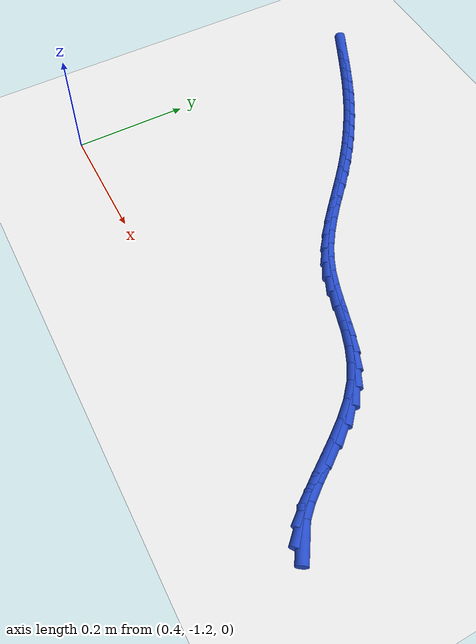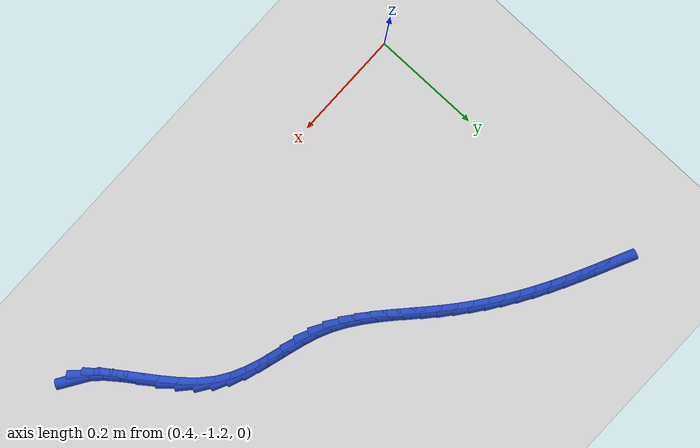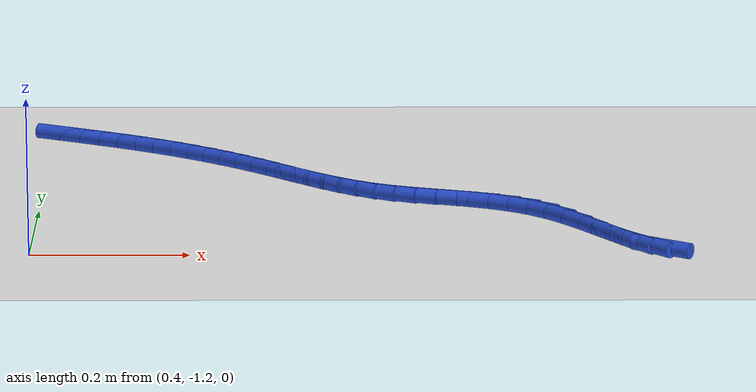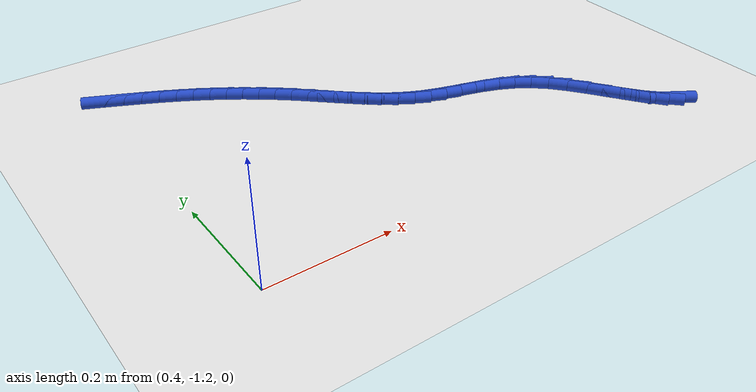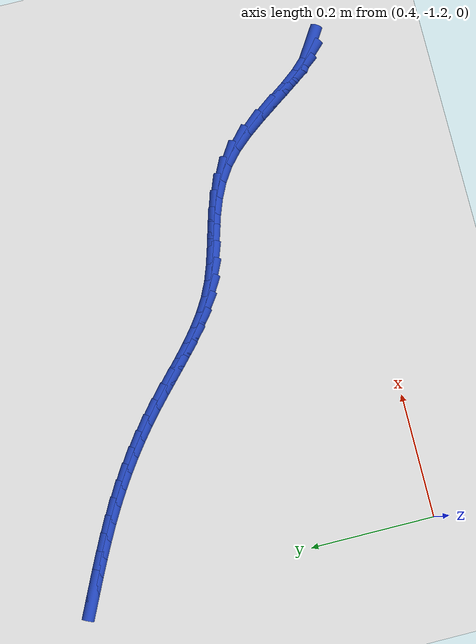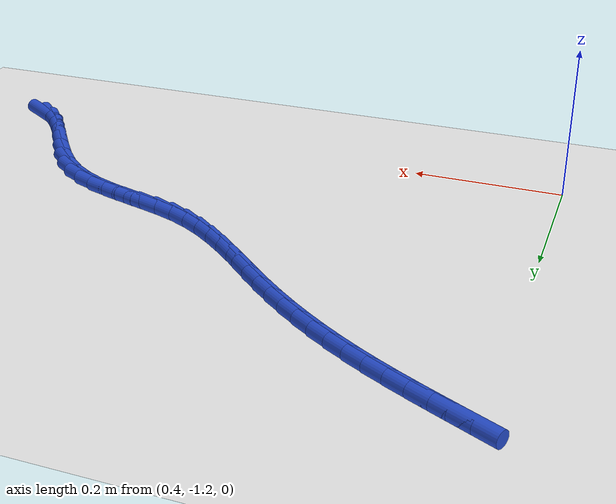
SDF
<sdf version="1.6">
 <world name="default">
  <model name="ground_plane">
   <static>1</static>
   <link name="link">
    <collision name="collision">
     <geometry><plane><normal>0 0 1</normal><size>100 100</size></plane></geometry>
     <surface><friction><ode><mu>100</mu><mu2>50</mu2></ode></friction></surface>
    </collision>
    <visual name="visual">
     <cast_shadows>0</cast_shadows>
     <geometry><plane><normal>0 0 1</normal><size>100 100</size></plane></geometry>
     <material>
      <script><uri>file://media/materials/scripts/gazebo.material</uri><name>Gazebo/WhiteGlow</name></script>
     </material>
    </visual>
   </link>
  </model>
  <model name="line">
   <link name="link_216">
    <pose>1.1866584900869217 -1.1971307438332957 0.01 0 1.57 -0.5693423701207709</pose>
    <collision name="collision">
     <geometry><cylinder><radius>0.01</radius><length>0.08</length></cylinder></geometry>
    </collision>
    <visual name="visual">
     <material>
      <script><name>Gazebo/Blue</name><uri>file://media/materials/scripts/gazebo.material</uri></script>
     </material>
     <geometry><cylinder><radius>0.01</radius><length>0.08</length></cylinder></geometry>
    </visual>
   </link>
   <link name="link_217">
    <pose>1.1690321390657084 -1.1858491541812 0.01 0 1.57 -0.7975392873785471</pose>
    <collision name="collision">
     <geometry><cylinder><radius>0.01</radius><length>0.08</length></cylinder></geometry>
    </collision>
    <visual name="visual">
     <material>
      <script><name>Gazebo/Blue</name><uri>file://media/materials/scripts/gazebo.material</uri></script>
     </material>
     <geometry><cylinder><radius>0.01</radius><length>0.08</length></cylinder></geometry>
    </visual>
   </link>
   <link name="link_218">
    <pose>1.1513226930928024 -1.1677043762399857 0.01 0 1.57 -0.9092844599987848</pose>
    <collision name="collision">
     <geometry><cylinder><radius>0.01</radius><length>0.08</length></cylinder></geometry>
    </collision>
    <visual name="visual">
     <material>
      <script><name>Gazebo/Blue</name><uri>file://media/materials/scripts/gazebo.material</uri></script>
     </material>
     <geometry><cylinder><radius>0.01</radius><length>0.08</length></cylinder></geometry>
    </visual>
   </link>
   <link name="link_219">
    <pose>1.1332986395376108 -1.1445529922296882 0.01 0 1.57 -0.9560198471077246</pose>
    <collision name="collision">
     <geometry><cylinder><radius>0.01</radius><length>0.08</length></cylinder></geometry>
    </collision>
    <visual name="visual">
     <material>
      <script><name>Gazebo/Blue</name><uri>file://media/materials/scripts/gazebo.material</uri></script>
     </material>
     <geometry><cylinder><radius>0.01</radius><length>0.08</length></cylinder></geometry>
    </visual>
   </link>
   <link name="link_220">
    <pose>1.1147284657695387 -1.1182515843703422 0.01 0 1.57 -0.9593067928655916</pose>
    <collision name="collision">
     <geometry><cylinder><radius>0.01</radius><length>0.08</length></cylinder></geometry>
    </collision>
    <visual name="visual">
     <material>
      <script><name>Gazebo/Blue</name><uri>file://media/materials/scripts/gazebo.material</uri></script>
     </material>
     <geometry><cylinder><radius>0.01</radius><length>0.08</length></cylinder></geometry>
    </visual>
   </link>
   <link name="link_221">
    <pose>1.0953806591579929 -1.090656734881984 0.01 0 1.57 -0.9253289901051559</pose>
    <collision name="collision">
     <geometry><cylinder><radius>0.01</radius><length>0.08</length></cylinder></geometry>
    </collision>
    <visual name="visual">
     <material>
      <script><name>Gazebo/Blue</name><uri>file://media/materials/scripts/gazebo.material</uri></script>
     </material>
     <geometry><cylinder><radius>0.01</radius><length>0.08</length></cylinder></geometry>
    </visual>
   </link>
   <link name="link_222">
    <pose>1.0750237070723792 -1.0636250259846476 0.01 0 1.57 -0.8505385525816863</pose>
    <collision name="collision">
     <geometry><cylinder><radius>0.01</radius><length>0.08</length></cylinder></geometry>
    </collision>
    <visual name="visual">
     <material>
      <script><name>Gazebo/Blue</name><uri>file://media/materials/scripts/gazebo.material</uri></script>
     </material>
     <geometry><cylinder><radius>0.01</radius><length>0.08</length></cylinder></geometry>
    </visual>
   </link>
   <link name="link_223">
    <pose>1.0534260968821043 -1.0390130398983684 0.01 0 1.57 -0.7250607380103447</pose>
    <collision name="collision">
     <geometry><cylinder><radius>0.01</radius><length>0.08</length></cylinder></geometry>
    </collision>
    <visual name="visual">
     <material>
      <script><name>Gazebo/Blue</name><uri>file://media/materials/scripts/gazebo.material</uri></script>
     </material>
     <geometry><cylinder><radius>0.01</radius><length>0.08</length></cylinder></geometry>
    </visual>
   </link>
   <link name="link_224">
    <pose>1.030374599080651 -1.0185879929364443 0.01 0 1.57 -0.5787237182638838</pose>
    <collision name="collision">
     <geometry><cylinder><radius>0.01</radius><length>0.08</length></cylinder></geometry>
    </collision>
    <visual name="visual">
     <material>
      <script><name>Gazebo/Blue</name><uri>file://media/materials/scripts/gazebo.material</uri></script>
     </material>
     <geometry><cylinder><radius>0.01</radius><length>0.08</length></cylinder></geometry>
    </visual>
   </link>
   <link name="link_225">
    <pose>1.0059589694364879 -1.002636142593941 0.01 0 1.57 -0.4538645234127954</pose>
    <collision name="collision">
     <geometry><cylinder><radius>0.01</radius><length>0.08</length></cylinder></geometry>
    </collision>
    <visual name="visual">
     <material>
      <script><name>Gazebo/Blue</name><uri>file://media/materials/scripts/gazebo.material</uri></script>
     </material>
     <geometry><cylinder><radius>0.01</radius><length>0.08</length></cylinder></geometry>
    </visual>
   </link>
   <link name="link_226">
    <pose>0.980518226397697 -0.9902253777060909 0.01 0 1.57 -0.3602207529281299</pose>
    <collision name="collision">
     <geometry><cylinder><radius>0.01</radius><length>0.08</length></cylinder></geometry>
    </collision>
    <visual name="visual">
     <material>
      <script><name>Gazebo/Blue</name><uri>file://media/materials/scripts/gazebo.material</uri></script>
     </material>
     <geometry><cylinder><radius>0.01</radius><length>0.08</length></cylinder></geometry>
    </visual>
   </link>
   <link name="link_227">
    <pose>0.9543987985475458 -0.9803873671794677 0.01 0 1.57 -0.30176292657041004</pose>
    <collision name="collision">
     <geometry><cylinder><radius>0.01</radius><length>0.08</length></cylinder></geometry>
    </collision>
    <visual name="visual">
     <material>
      <script><name>Gazebo/Blue</name><uri>file://media/materials/scripts/gazebo.material</uri></script>
     </material>
     <geometry><cylinder><radius>0.01</radius><length>0.08</length></cylinder></geometry>
    </visual>
   </link>
   <link name="link_228">
    <pose>0.927947114469301 -0.972153779920644 0.01 0 1.57 -0.2798348913563713</pose>
    <collision name="collision">
     <geometry><cylinder><radius>0.01</radius><length>0.08</length></cylinder></geometry>
    </collision>
    <visual name="visual">
     <material>
      <script><name>Gazebo/Blue</name><uri>file://media/materials/scripts/gazebo.material</uri></script>
     </material>
     <geometry><cylinder><radius>0.01</radius><length>0.08</length></cylinder></geometry>
    </visual>
   </link>
   <link name="link_229">
    <pose>0.9015096027462287 -0.9645562848361928 0.01 0 1.57 -0.29520506908128824</pose>
    <collision name="collision">
     <geometry><cylinder><radius>0.01</radius><length>0.08</length></cylinder></geometry>
    </collision>
    <visual name="visual">
     <material>
      <script><name>Gazebo/Blue</name><uri>file://media/materials/scripts/gazebo.material</uri></script>
     </material>
     <geometry><cylinder><radius>0.01</radius><length>0.08</length></cylinder></geometry>
    </visual>
   </link>
   <link name="link_230">
    <pose>0.8754326919615958 -0.9566265508326872 0.01 0 1.57 -0.34894132270465744</pose>
    <collision name="collision">
     <geometry><cylinder><radius>0.01</radius><length>0.08</length></cylinder></geometry>
    </collision>
    <visual name="visual">
     <material>
      <script><name>Gazebo/Blue</name><uri>file://media/materials/scripts/gazebo.material</uri></script>
     </material>
     <geometry><cylinder><radius>0.01</radius><length>0.08</length></cylinder></geometry>
    </visual>
   </link>
   <link name="link_231">
    <pose>0.8500628106986687 -0.9473962468167001 0.01 0 1.57 -0.4405204934752291</pose>
    <collision name="collision">
     <geometry><cylinder><radius>0.01</radius><length>0.08</length></cylinder></geometry>
    </collision>
    <visual name="visual">
     <material>
      <script><name>Gazebo/Blue</name><uri>file://media/materials/scripts/gazebo.material</uri></script>
     </material>
     <geometry><cylinder><radius>0.01</radius><length>0.08</length></cylinder></geometry>
    </visual>
   </link>
   <link name="link_232">
    <pose>0.8257346418905878 -0.9359275457532252 0.01 0 1.57 -0.540925117906545</pose>
    <collision name="collision">
     <geometry><cylinder><radius>0.01</radius><length>0.08</length></cylinder></geometry>
    </collision>
    <visual name="visual">
     <material>
      <script><name>Gazebo/Blue</name><uri>file://media/materials/scripts/gazebo.material</uri></script>
     </material>
     <geometry><cylinder><radius>0.01</radius><length>0.08</length></cylinder></geometry>
    </visual>
   </link>
   <link name="link_233">
    <pose>0.802514530857813 -0.9219795072099874 0.01 0 1.57 -0.6213213689186607</pose>
    <collision name="collision">
     <geometry><cylinder><radius>0.01</radius><length>0.08</length></cylinder></geometry>
    </collision>
    <visual name="visual">
     <material>
      <script><name>Gazebo/Blue</name><uri>file://media/materials/scripts/gazebo.material</uri></script>
     </material>
     <geometry><cylinder><radius>0.01</radius><length>0.08</length></cylinder></geometry>
    </visual>
   </link>
   <link name="link_234">
    <pose>0.7802014883185591 -0.9060054724876785 0.01 0 1.57 -0.680968426996805</pose>
    <collision name="collision">
     <geometry><cylinder><radius>0.01</radius><length>0.08</length></cylinder></geometry>
    </collision>
    <visual name="visual">
     <material>
      <script><name>Gazebo/Blue</name><uri>file://media/materials/scripts/gazebo.material</uri></script>
     </material>
     <geometry><cylinder><radius>0.01</radius><length>0.08</length></cylinder></geometry>
    </visual>
   </link>
   <link name="link_235">
    <pose>0.7585829799438844 -0.8884887659691695 0.01 0 1.57 -0.7210126050683676</pose>
    <collision name="collision">
     <geometry><cylinder><radius>0.01</radius><length>0.08</length></cylinder></geometry>
    </collision>
    <visual name="visual">
     <material>
      <script><name>Gazebo/Blue</name><uri>file://media/materials/scripts/gazebo.material</uri></script>
     </material>
     <geometry><cylinder><radius>0.01</radius><length>0.08</length></cylinder></geometry>
    </visual>
   </link>
   <link name="link_236">
    <pose>0.7374464714048451 -0.8699127120373297 0.01 0 1.57 -0.7425706995114103</pose>
    <collision name="collision">
     <geometry><cylinder><radius>0.01</radius><length>0.08</length></cylinder></geometry>
    </collision>
    <visual name="visual">
     <material>
      <script><name>Gazebo/Blue</name><uri>file://media/materials/scripts/gazebo.material</uri></script>
     </material>
     <geometry><cylinder><radius>0.01</radius><length>0.08</length></cylinder></geometry>
    </visual>
   </link>
   <link name="link_237">
    <pose>0.7165794283724977 -0.8507606350750289 0.01 0 1.57 -0.7463382584181456</pose>
    <collision name="collision">
     <geometry><cylinder><radius>0.01</radius><length>0.08</length></cylinder></geometry>
    </collision>
    <visual name="visual">
     <material>
      <script><name>Gazebo/Blue</name><uri>file://media/materials/scripts/gazebo.material</uri></script>
     </material>
     <geometry><cylinder><radius>0.01</radius><length>0.08</length></cylinder></geometry>
    </visual>
   </link>
   <link name="link_238">
    <pose>0.6957693165178995 -0.8315158594651372 0.01 0 1.57 -0.73241995016818</pose>
    <collision name="collision">
     <geometry><cylinder><radius>0.01</radius><length>0.08</length></cylinder></geometry>
    </collision>
    <visual name="visual">
     <material>
      <script><name>Gazebo/Blue</name><uri>file://media/materials/scripts/gazebo.material</uri></script>
     </material>
     <geometry><cylinder><radius>0.01</radius><length>0.08</length></cylinder></geometry>
    </visual>
   </link>
   <link name="link_239">
    <pose>0.6748036024335081 -0.8126617066499123 0.01 0 1.57 -0.7036503330837721</pose>
    <collision name="collision">
     <geometry><cylinder><radius>0.01</radius><length>0.08</length></cylinder></geometry>
    </collision>
    <visual name="visual">
     <material>
      <script><name>Gazebo/Blue</name><uri>file://media/materials/scripts/gazebo.material</uri></script>
     </material>
     <geometry><cylinder><radius>0.01</radius><length>0.08</length></cylinder></geometry>
    </visual>
   </link>
   <link name="link_240">
    <pose>0.6535000944622189 -0.794584663654881 0.01 0 1.57 -0.671771883702568</pose>
    <collision name="collision">
     <geometry><cylinder><radius>0.01</radius><length>0.08</length></cylinder></geometry>
    </collision>
    <visual name="visual">
     <material>
      <script><name>Gazebo/Blue</name><uri>file://media/materials/scripts/gazebo.material</uri></script>
     </material>
     <geometry><cylinder><radius>0.01</radius><length>0.08</length></cylinder></geometry>
    </visual>
   </link>
   <link name="link_241">
    <pose>0.6317868041204853 -0.777319508725428 0.01 0 1.57 -0.6397602968588639</pose>
    <collision name="collision">
     <geometry><cylinder><radius>0.01</radius><length>0.08</length></cylinder></geometry>
    </collision>
    <visual name="visual">
     <material>
      <script><name>Gazebo/Blue</name><uri>file://media/materials/scripts/gazebo.material</uri></script>
     </material>
     <geometry><cylinder><radius>0.01</radius><length>0.08</length></cylinder></geometry>
    </visual>
   </link>
   <link name="link_242">
    <pose>0.6096167552116529 -0.7608211944483237 0.01 0 1.57 -0.6079046488071548</pose>
    <collision name="collision">
     <geometry><cylinder><radius>0.01</radius><length>0.08</length></cylinder></geometry>
    </collision>
    <visual name="visual">
     <material>
      <script><name>Gazebo/Blue</name><uri>file://media/materials/scripts/gazebo.material</uri></script>
     </material>
     <geometry><cylinder><radius>0.01</radius><length>0.08</length></cylinder></geometry>
    </visual>
   </link>
   <link name="link_243">
    <pose>0.5869429715390663 -0.7450446734103368 0.01 0 1.57 -0.5764918603194846</pose>
    <collision name="collision">
     <geometry><cylinder><radius>0.01</radius><length>0.08</length></cylinder></geometry>
    </collision>
    <visual name="visual">
     <material>
      <script><name>Gazebo/Blue</name><uri>file://media/materials/scripts/gazebo.material</uri></script>
     </material>
     <geometry><cylinder><radius>0.01</radius><length>0.08</length></cylinder></geometry>
    </visual>
   </link>
   <link name="link_244">
    <pose>0.5637184769060718 -0.7299448981982382 0.01 0 1.57 -0.5457964159799242</pose>
    <collision name="collision">
     <geometry><cylinder><radius>0.01</radius><length>0.08</length></cylinder></geometry>
    </collision>
    <visual name="visual">
     <material>
      <script><name>Gazebo/Blue</name><uri>file://media/materials/scripts/gazebo.material</uri></script>
     </material>
     <geometry><cylinder><radius>0.01</radius><length>0.08</length></cylinder></geometry>
    </visual>
   </link>
   <link name="link_245">
    <pose>0.539896295116014 -0.7154768213987969 0.01 0 1.57 -0.5160994441050782</pose>
    <collision name="collision">
     <geometry><cylinder><radius>0.01</radius><length>0.08</length></cylinder></geometry>
    </collision>
    <visual name="visual">
     <material>
      <script><name>Gazebo/Blue</name><uri>file://media/materials/scripts/gazebo.material</uri></script>
     </material>
     <geometry><cylinder><radius>0.01</radius><length>0.08</length></cylinder></geometry>
    </visual>
   </link>
   <link name="link_246">
    <pose>0.5154304205852048 -0.701595028988842 0.01 0 1.57 -0.489462901541704</pose>
    <collision name="collision">
     <geometry><cylinder><radius>0.01</radius><length>0.08</length></cylinder></geometry>
    </collision>
    <visual name="visual">
     <material>
      <script><name>Gazebo/Blue</name><uri>file://media/materials/scripts/gazebo.material</uri></script>
     </material>
     <geometry><cylinder><radius>0.01</radius><length>0.08</length></cylinder></geometry>
    </visual>
   </link>
   <link name="link_247">
    <pose>0.49034010677268447 -0.6882294579712313 0.01 0 1.57 -0.46876711447742203</pose>
    <collision name="collision">
     <geometry><cylinder><radius>0.01</radius><length>0.08</length></cylinder></geometry>
    </collision>
    <visual name="visual">
     <material>
      <script><name>Gazebo/Blue</name><uri>file://media/materials/scripts/gazebo.material</uri></script>
     </material>
     <geometry><cylinder><radius>0.01</radius><length>0.08</length></cylinder></geometry>
    </visual>
   </link>
   <link name="link_248">
    <pose>0.4647500174437573 -0.6752702308528249 0.01 0 1.57 -0.4540028432099423</pose>
    <collision name="collision">
     <geometry><cylinder><radius>0.01</radius><length>0.08</length></cylinder></geometry>
    </collision>
    <visual name="visual">
     <material>
      <script><name>Gazebo/Blue</name><uri>file://media/materials/scripts/gazebo.material</uri></script>
     </material>
     <geometry><cylinder><radius>0.01</radius><length>0.08</length></cylinder></geometry>
    </visual>
   </link>
   <link name="link_249">
    <pose>0.43879440061208197 -0.6626038500768366 0.01 0 1.57 -0.44495079131505366</pose>
    <collision name="collision">
     <geometry><cylinder><radius>0.01</radius><length>0.08</length></cylinder></geometry>
    </collision>
    <visual name="visual">
     <material>
      <script><name>Gazebo/Blue</name><uri>file://media/materials/scripts/gazebo.material</uri></script>
     </material>
     <geometry><cylinder><radius>0.01</radius><length>0.08</length></cylinder></geometry>
    </visual>
   </link>
   <link name="link_250">
    <pose>0.4126075042913168 -0.6501168180864798 0.01 0 1.57 -0.4414695618421717</pose>
    <collision name="collision">
     <geometry><cylinder><radius>0.01</radius><length>0.08</length></cylinder></geometry>
    </collision>
    <visual name="visual">
     <material>
      <script><name>Gazebo/Blue</name><uri>file://media/materials/scripts/gazebo.material</uri></script>
     </material>
     <geometry><cylinder><radius>0.01</radius><length>0.08</length></cylinder></geometry>
    </visual>
   </link>
  </model>
 </world>
</sdf>
